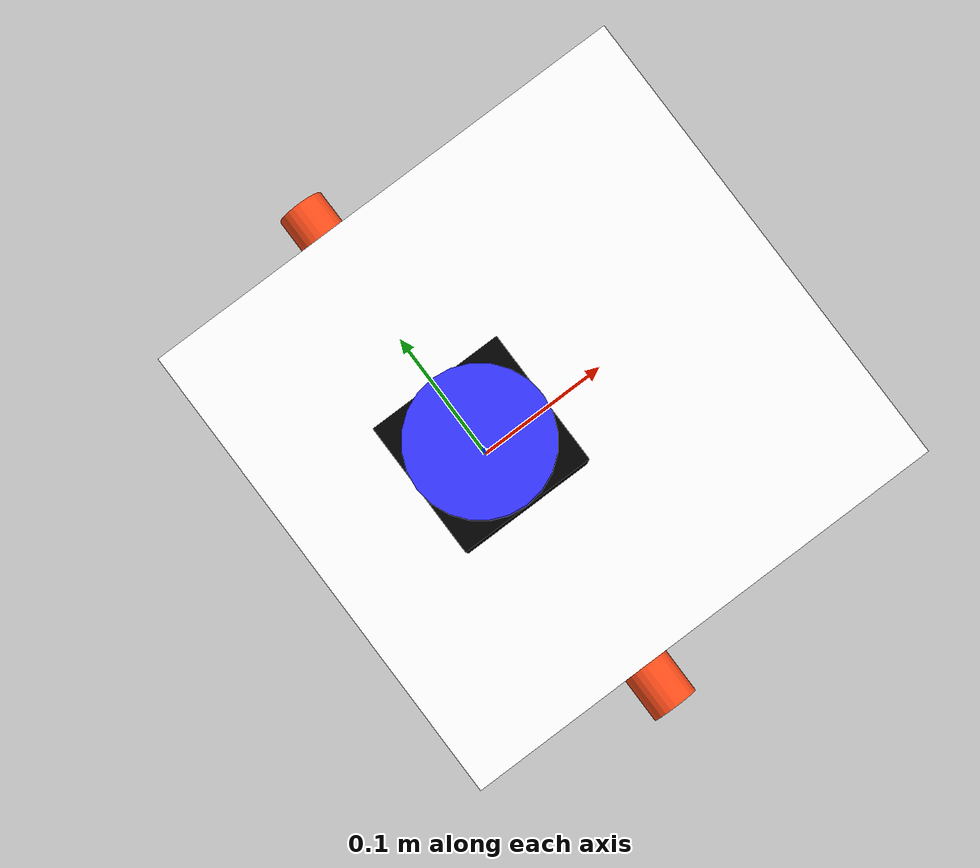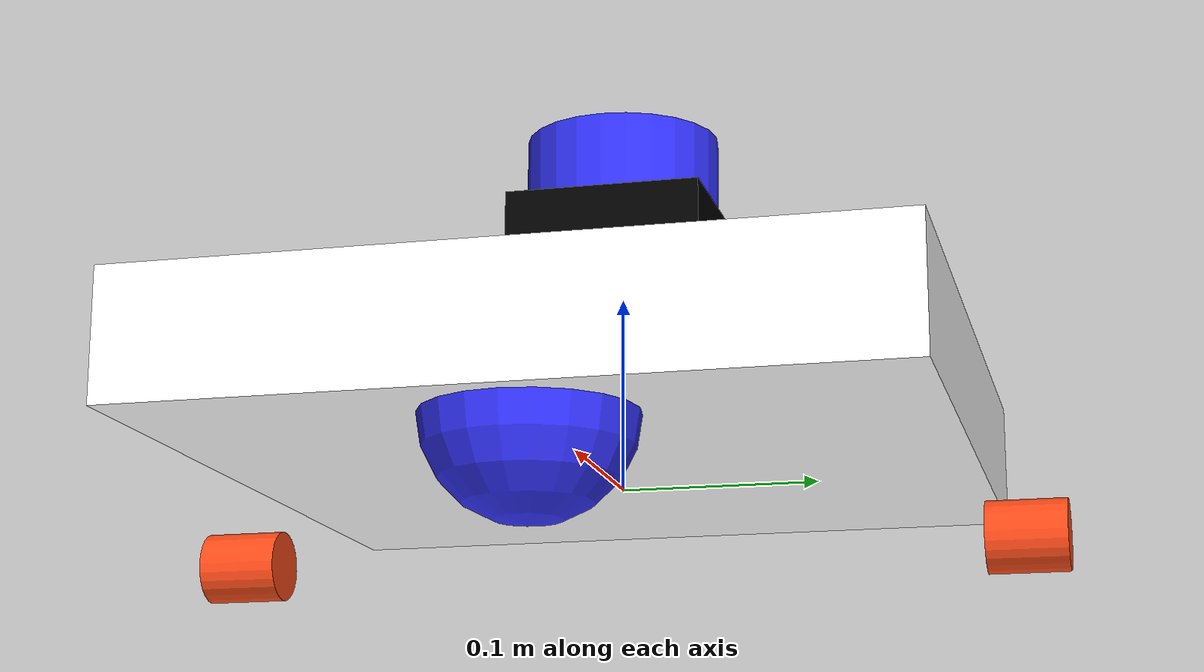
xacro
<?xml version="1.0"?>
<robot xmlns:xacro="http://www.ros.org/wiki/xacro"  name="robot">

    <xacro:include filename="robot_core.xacro"/>
    <xacro:include filename="ros2_control.xacro"/>
    <!--xacro:include filename="gazebo_control.xacro"/-->
    <xacro:include filename="lidar.xacro"/>

</robot>

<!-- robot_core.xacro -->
<robot xmlns:xacro="http://www.ros.org/wiki/xacro">

    <xacro:include filename="inertial_macros.xacro"/>

    <material name="white">
        <color rgba="1 1 1 1"/>
    </material>

    <material name="orange">
        <color rgba="1 0.3 0.1 1"/>
    </material>

    <material name="blue">
        <color rgba="0.2 0.2 1 1"/>
    </material>

    <material name="black">
        <color rgba="0 0 0 1"/>
    </material>

    <!-- Base link-->

    <link name="base_link">
    </link>

    <joint name="chassis_joint" type="fixed">
    <parent link="base_link"/>
    <child link="chassis"/>
    <origin xyz="-0.1 0 0"/>
    </joint>

    <!-- Chassis link-->

    <link name="chassis">
        <visual>
            <origin xyz="0.15 0 0.03175" rpy="0 0 0"/>
            <geometry>
                <box size="0.38 0.365 0.0635"/>
            </geometry>
            <material name="white"/>
        </visual>
        <collision>
            <origin xyz="0.15 0 0.03175" rpy="0 0 0"/>
            <geometry>
                <box size="0.38 0.365 0.0635"/>
            </geometry>
        </collision>
        <xacro:inertial_box mass="5" x="0.38" y="0.365" z="0.0635">
            <origin xyz="0.15 0 0.03175" rpy="0 0 0"/>
        </xacro:inertial_box>
    </link>

    <!-- Left wheel link-->

    <joint name="left_wheel_joint" type="continuous">
        <parent link="base_link"/>
        <child link="left_wheel"/>
        <origin xyz="0 0.2025 -0.032" rpy="-${pi/2} 0 0"/>
        <axis xyz="0 0 1"/>
    </joint>

    <link name="left_wheel">
        <visual>
            <geometry>
                <cylinder radius="0.018" length="0.04" />
            </geometry>
            <material name="orange"/>
        </visual>
        <collision>
            <geometry>
                <sphere radius="0.018"/>
            </geometry>
        </collision>
        <xacro:inertial_cylinder mass="0.1" length="0.04" radius="0.018">
            <origin xyz="0 0 0" rpy="0 0 0"/>
        </xacro:inertial_cylinder>
    </link>

    <!-- Right wheel link-->

    <joint name="right_wheel_joint" type="continuous">
        <parent link="base_link"/>
        <child link="right_wheel"/>
        <origin xyz="0 -0.2025 -0.032" rpy="${pi/2} 0 0"/>
        <axis xyz="0 0 -1"/>
    </joint>

    <link name="right_wheel">
        <visual>
            <geometry>
                <cylinder radius="0.018" length="0.04" />
            </geometry>
            <material name="orange"/>
        </visual>
        <collision>
            <geometry>
                <sphere radius="0.018"/>
            </geometry>
        </collision>
        <xacro:inertial_cylinder mass="0.1" length="0.04" radius="0.018">
            <origin xyz="0 0 0" rpy="0 0 0"/>
        </xacro:inertial_cylinder>
    </link>

    <!-- Caster wheel link-->

    <joint name="caster_wheel_joint" type="fixed">
        <parent link="chassis"/>
        <child link="caster_wheel"/>
        <origin xyz="0.28 0 0"/>
    </joint>

    <link name="caster_wheel">
        <visual>
            <geometry>
                <sphere radius="0.05"/>
            </geometry>
            <material name="blue"/>
        </visual>
        <collision>
            <geometry>
                <sphere radius="0.05"/>
            </geometry>
        </collision>
        <xacro:inertial_sphere mass="0.1" radius="0.05">
            <origin xyz="0 0 0" rpy="0 0 0"/>
        </xacro:inertial_sphere>
    </link>

    <gazebo reference="caster_wheel">
        <material>Gazebo/Black</material>
        <mu1 value="0.001"/>
        <mu2 value="0.002"/>
    </gazebo>

</robot>

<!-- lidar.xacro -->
<robot xmlns:xacro="http://www.ros.org/wiki/xacro">

    <joint name="support_joint" type="fixed">
        <parent link="chassis"/>
        <child link="support_frame"/>
        <origin xyz="0.1 0 0.10545"/>
    </joint>

    <link name="support_frame">
        <visual>
            <geometry>
                <box size="0.1 0.1 0.0839"/>
            </geometry>
            <material name="black"/>
        </visual>
        <collision>
            <geometry>
                <box size="0.1 0.1 0.0839"/>
            </geometry>
        </collision>
        <xacro:inertial_box mass="0.1" x="0.1" y="0" z="0.175">
            <origin xyz="0 0 0" rpy="0 0 0"/>
        </xacro:inertial_box>
    </link>

    <joint name="laser_joint" type="fixed">
        <parent link="support_frame"/>
        <child link="laser_frame"/>
        <origin xyz="0 0 0.06" rpy="0 0 0"/>
    </joint>

    <link name="laser_frame">
        <visual>
            <geometry>
                <cylinder radius="0.05" length="0.04" />
            </geometry>
            <material name="blue"/>
        </visual>
        <collision>
            <geometry>
                <cylinder radius="0.05" length="0.04" />
            </geometry>
        </collision>
        <xacro:inertial_cylinder mass="0.1" length="0.04" radius="0.05">
            <origin xyz="0 0 0" rpy="0 0 0"/>
        </xacro:inertial_cylinder>
    </link>

    <gazebo reference="laser_frame">
        <sensor name="laser" type="gpu_lidar">
            <pose> 0 0 0 0 0 0 </pose>
            <visualize>true</visualize>
            <update_rate>10</update_rate>
            <lidar>
                <scan>
                    <horizontal>
                        <samples>360</samples>
                        <min_angle>-3.14</min_angle>
                        <max_angle>3.14</max_angle>
                    </horizontal>
                </scan>
                <range>
                    <min>0.3</min>
                    <max>12</max>
                </range>
            </lidar>
            <topic>scan</topic>
            <gz_frame_id>laser_frame</gz_frame_id>
        </sensor>
    </gazebo>

</robot>
